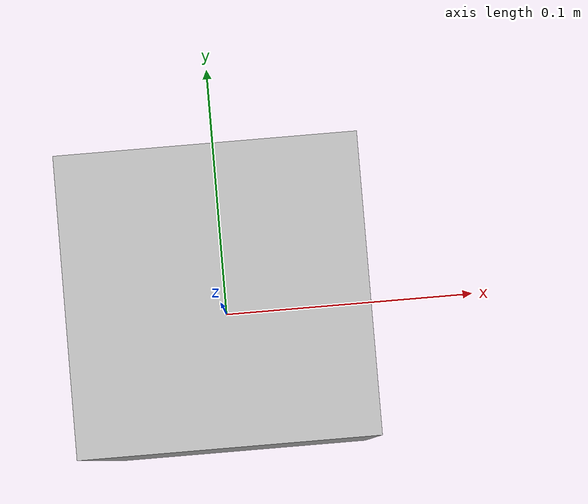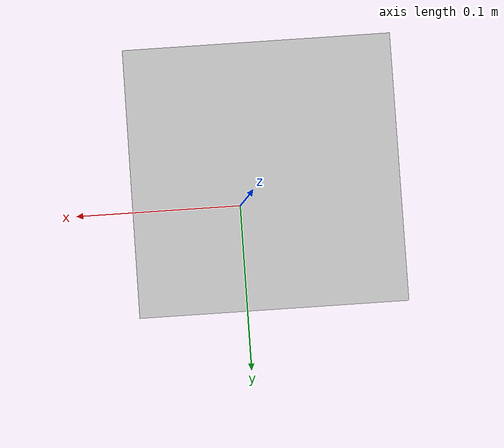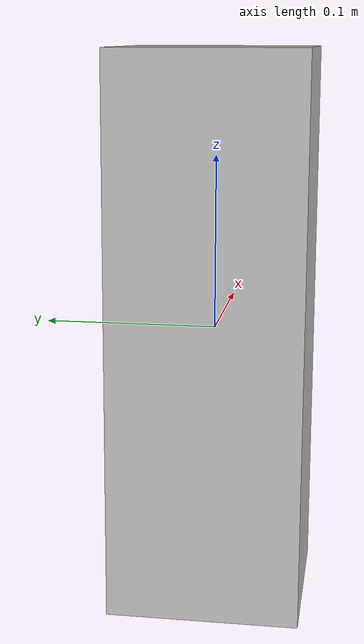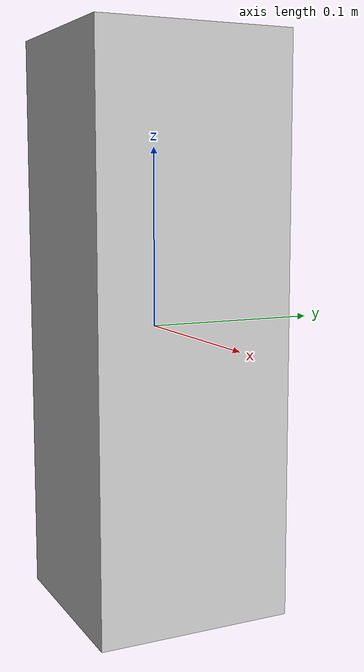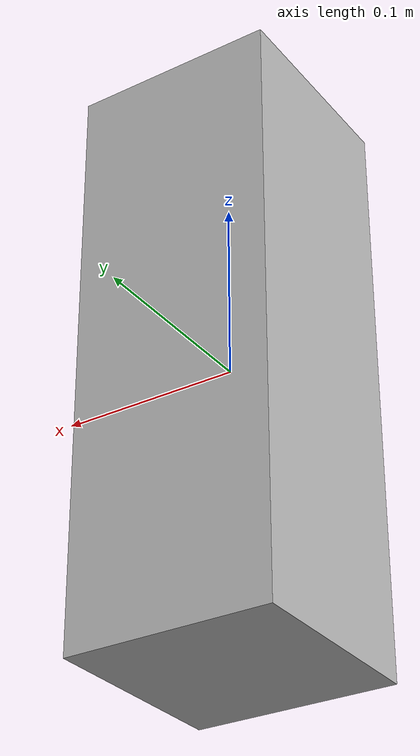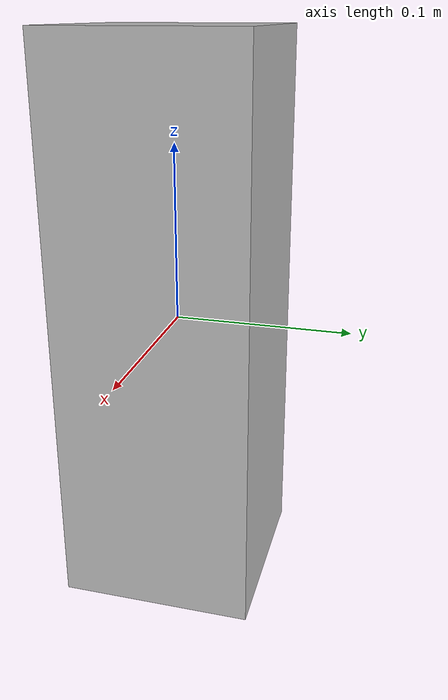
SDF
<?xml version="1.0"?>
<sdf version="1.9">
  <model name="pierre_camelot">
    <!-- Pierre Eurobot 2027 : boîte carton 110 x 110 x 320 mm, grand axe selon z (debout),
         ArUco 4x4_50 ID 13 de 80 mm centré sur les 4 grandes faces. -->
    <link name="link">
      <inertial><mass>0.09</mass><inertia><ixx>8.5875e-04</ixx><ixy>0</ixy><ixz>0</ixz><iyy>8.5875e-04</iyy><iyz>0</iyz><izz>1.8150e-04</izz></inertia></inertial>
      <collision name="c"><geometry><box><size>0.11 0.11 0.32</size></box></geometry><surface><friction><ode><mu>0.6</mu><mu2>0.6</mu2></ode></friction></surface></collision>
      <visual name="v"><geometry><mesh><uri>model://pierre_camelot/meshes/pierre_camelot.obj</uri></mesh></geometry></visual>
    </link>
  </model>
</sdf>
